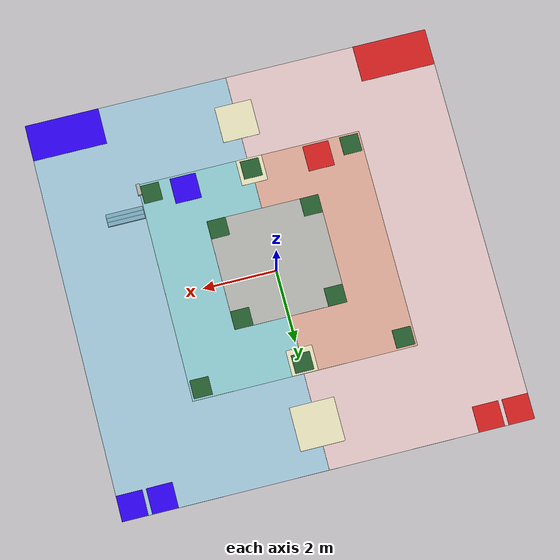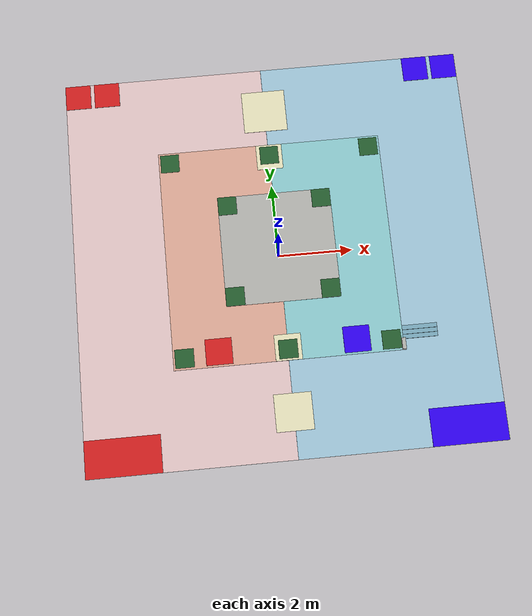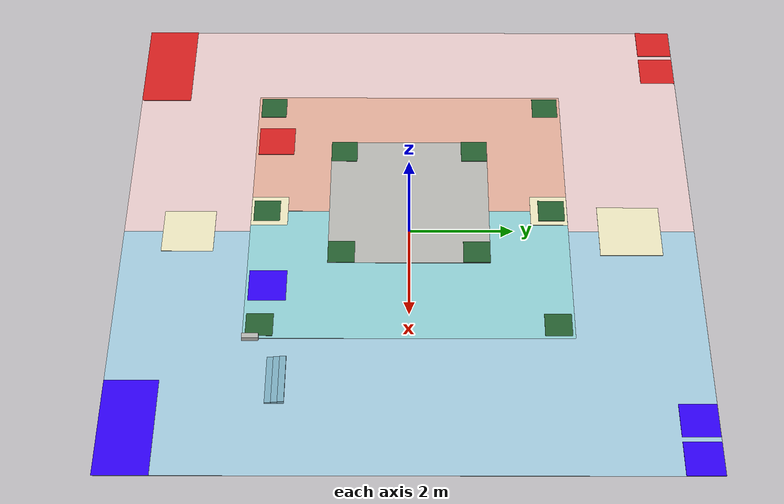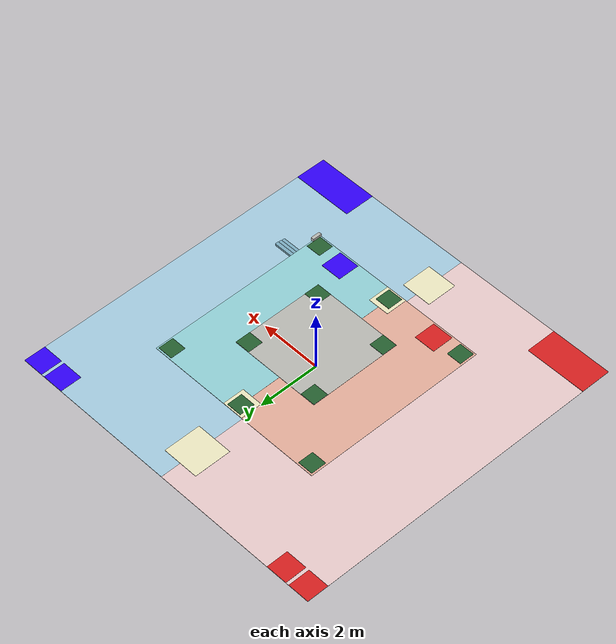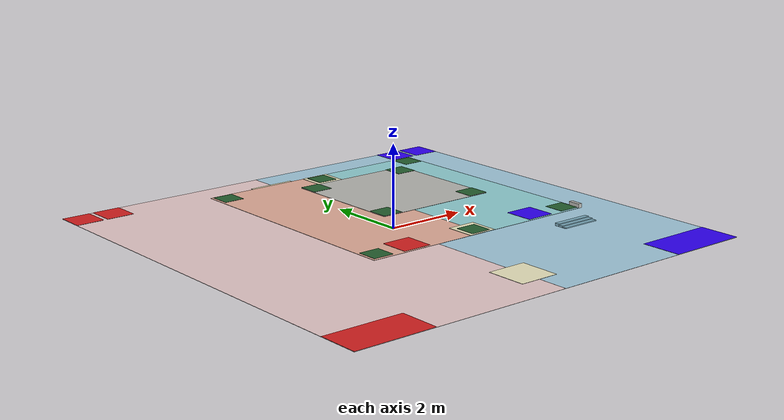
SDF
<sdf version="1.7">
 <world name="robocon2027_arena">
  <model name="rampsup_blue_1">
   <static>1</static>
   <pose>3.5 -2.525 0.015 0 -0 0</pose>
   <link name="link">
    <collision name="col"><geometry><box><size>1 0.118667 0.03</size></box></geometry></collision>
    <visual name="vis">
     <geometry><box><size>1 0.118667 0.03</size></box></geometry>
     <material>
      <ambient>0.51 0.706 0.784 1</ambient>
      <diffuse>0.51 0.706 0.784 1</diffuse>
      <specular>0.04 0.04 0.04 1</specular>
      <emissive>0 0 0 1</emissive>
     </material>
    </visual>
   </link>
  </model>
  <model name="rampsup_blue_2">
   <static>1</static>
   <pose>3.5 -2.4083 0.025 0 -0 0</pose>
   <link name="link">
    <collision name="col"><geometry><box><size>1 0.118667 0.05</size></box></geometry></collision>
    <visual name="vis">
     <geometry><box><size>1 0.118667 0.05</size></box></geometry>
     <material>
      <ambient>0.51 0.706 0.784 1</ambient>
      <diffuse>0.51 0.706 0.784 1</diffuse>
      <specular>0.04 0.04 0.04 1</specular>
      <emissive>0 0 0 1</emissive>
     </material>
    </visual>
   </link>
  </model>
  <model name="rampsup_blue_3">
   <static>1</static>
   <pose>3.5 -2.2917 0.035 0 -0 0</pose>
   <link name="link">
    <collision name="col"><geometry><box><size>1 0.118667 0.07</size></box></geometry></collision>
    <visual name="vis">
     <geometry><box><size>1 0.118667 0.07</size></box></geometry>
     <material>
      <ambient>0.51 0.706 0.784 1</ambient>
      <diffuse>0.51 0.706 0.784 1</diffuse>
      <specular>0.04 0.04 0.04 1</specular>
      <emissive>0 0 0 1</emissive>
     </material>
    </visual>
   </link>
  </model>
  <model name="rail_we_+_0">
   <static>1</static>
   <pose>3 -2.85 0.65 0 -0 0</pose>
   <link name="link">
    <collision name="col"><geometry><box><size>0.1 0.3 0.1</size></box></geometry></collision>
    <visual name="vis">
     <geometry><box><size>0.1 0.3 0.1</size></box></geometry>
     <material>
      <ambient>0.745 0.745 0.725 1</ambient>
      <diffuse>0.745 0.745 0.725 1</diffuse>
      <specular>0.04 0.04 0.04 1</specular>
      <emissive>0 0 0 1</emissive>
     </material>
    </visual>
   </link>
  </model>
  <model name="field_decor">
   <static>1</static>
   <link name="link">
    <visual name="v0">
     <pose>-2.75 0 0.004 0 -0 0</pose>
     <geometry><box><size>5.499 10.999 0.006</size></box></geometry>
     <material>
      <ambient>0.941 0.824 0.824 1</ambient>
      <diffuse>0.941 0.824 0.824 1</diffuse>
      <specular>0.04 0.04 0.04 1</specular>
      <emissive>0 0 0 1</emissive>
     </material>
    </visual>
    <visual name="v1">
     <pose>2.75 0 0.004 0 -0 0</pose>
     <geometry><box><size>5.499 10.999 0.006</size></box></geometry>
     <material>
      <ambient>0.667 0.824 0.902 1</ambient>
      <diffuse>0.667 0.824 0.902 1</diffuse>
      <specular>0.04 0.04 0.04 1</specular>
      <emissive>0 0 0 1</emissive>
     </material>
    </visual>
    <visual name="v2">
     <pose>-5.15 5.15 0.01 0 -0 0</pose>
     <geometry><box><size>0.696 0.696 0.006</size></box></geometry>
     <material>
      <ambient>0.875 0.133 0.133 1</ambient>
      <diffuse>0.875 0.133 0.133 1</diffuse>
      <specular>0.04 0.04 0.04 1</specular>
      <emissive>0 0 0 1</emissive>
     </material>
    </visual>
    <visual name="v3">
     <pose>-4.35 5.15 0.01 0 -0 0</pose>
     <geometry><box><size>0.696 0.696 0.006</size></box></geometry>
     <material>
      <ambient>0.875 0.133 0.133 1</ambient>
      <diffuse>0.875 0.133 0.133 1</diffuse>
      <specular>0.04 0.04 0.04 1</specular>
      <emissive>0 0 0 1</emissive>
     </material>
    </visual>
    <visual name="v4">
     <pose>4.35 5.15 0.01 0 -0 0</pose>
     <geometry><box><size>0.696 0.696 0.006</size></box></geometry>
     <material>
      <ambient>0.196 0 1 1</ambient>
      <diffuse>0.196 0 1 1</diffuse>
      <specular>0.04 0.04 0.04 1</specular>
      <emissive>0 0 0 1</emissive>
     </material>
    </visual>
    <visual name="v5">
     <pose>5.15 5.15 0.01 0 -0 0</pose>
     <geometry><box><size>0.696 0.696 0.006</size></box></geometry>
     <material>
      <ambient>0.196 0 1 1</ambient>
      <diffuse>0.196 0 1 1</diffuse>
      <specular>0.04 0.04 0.04 1</specular>
      <emissive>0 0 0 1</emissive>
     </material>
    </visual>
    <visual name="v6">
     <pose>-4.5 -5 0.01 0 -0 0</pose>
     <geometry><box><size>2 1 0.006</size></box></geometry>
     <material>
      <ambient>0.875 0.133 0.133 1</ambient>
      <diffuse>0.875 0.133 0.133 1</diffuse>
      <specular>0.04 0.04 0.04 1</specular>
      <emissive>0 0 0 1</emissive>
     </material>
    </visual>
    <visual name="v7">
     <pose>4.5 -5 0.01 0 -0 0</pose>
     <geometry><box><size>2 1 0.006</size></box></geometry>
     <material>
      <ambient>0.196 0 1 1</ambient>
      <diffuse>0.196 0 1 1</diffuse>
      <specular>0.04 0.04 0.04 1</specular>
      <emissive>0 0 0 1</emissive>
     </material>
    </visual>
    <visual name="v8">
     <pose>0 4.25 0.01 0 -0 0</pose>
     <geometry><box><size>1.196 1.196 0.006</size></box></geometry>
     <material>
      <ambient>0.961 0.941 0.784 1</ambient>
      <diffuse>0.961 0.941 0.784 1</diffuse>
      <specular>0.04 0.04 0.04 1</specular>
      <emissive>0 0 0 1</emissive>
     </material>
    </visual>
    <visual name="v9">
     <pose>0 -4.25 0.01 0 -0 0</pose>
     <geometry><box><size>0.996 0.996 0.006</size></box></geometry>
     <material>
      <ambient>0.961 0.941 0.784 1</ambient>
      <diffuse>0.961 0.941 0.784 1</diffuse>
      <specular>0.04 0.04 0.04 1</specular>
      <emissive>0 0 0 1</emissive>
     </material>
    </visual>
    <visual name="v10">
     <pose>-1.5 0 0.604 0 -0 0</pose>
     <geometry><box><size>2.999 5.999 0.006</size></box></geometry>
     <material>
      <ambient>0.922 0.706 0.627 1</ambient>
      <diffuse>0.922 0.706 0.627 1</diffuse>
      <specular>0.04 0.04 0.04 1</specular>
      <emissive>0 0 0 1</emissive>
     </material>
    </visual>
    <visual name="v11">
     <pose>1.5 0 0.604 0 -0 0</pose>
     <geometry><box><size>2.999 5.999 0.006</size></box></geometry>
     <material>
      <ambient>0.588 0.843 0.863 1</ambient>
      <diffuse>0.588 0.843 0.863 1</diffuse>
      <specular>0.04 0.04 0.04 1</specular>
      <emissive>0 0 0 1</emissive>
     </material>
    </visual>
    <visual name="v12">
     <pose>0 0 0.904 0 -0 0</pose>
     <geometry><box><size>2.999 2.999 0.006</size></box></geometry>
     <material>
      <ambient>0.745 0.745 0.725 1</ambient>
      <diffuse>0.745 0.745 0.725 1</diffuse>
      <specular>0.04 0.04 0.04 1</specular>
      <emissive>0 0 0 1</emissive>
     </material>
    </visual>
    <visual name="v13">
     <pose>-1.8 -2.6 0.61 0 -0 0</pose>
     <geometry><box><size>0.696 0.696 0.006</size></box></geometry>
     <material>
      <ambient>0.875 0.133 0.133 1</ambient>
      <diffuse>0.875 0.133 0.133 1</diffuse>
      <specular>0.04 0.04 0.04 1</specular>
      <emissive>0 0 0 1</emissive>
     </material>
    </visual>
    <visual name="v14">
     <pose>1.8 -2.6 0.61 0 -0 0</pose>
     <geometry><box><size>0.696 0.696 0.006</size></box></geometry>
     <material>
      <ambient>0.196 0 1 1</ambient>
      <diffuse>0.196 0 1 1</diffuse>
      <specular>0.04 0.04 0.04 1</specular>
      <emissive>0 0 0 1</emissive>
     </material>
    </visual>
    <visual name="v15">
     <pose>0 -2.65 0.61 0 -0 0</pose>
     <geometry><box><size>0.696 0.696 0.006</size></box></geometry>
     <material>
      <ambient>0.961 0.941 0.784 1</ambient>
      <diffuse>0.961 0.941 0.784 1</diffuse>
      <specular>0.04 0.04 0.04 1</specular>
      <emissive>0 0 0 1</emissive>
     </material>
    </visual>
    <visual name="v16">
     <pose>0 2.65 0.61 0 -0 0</pose>
     <geometry><box><size>0.696 0.696 0.006</size></box></geometry>
     <material>
      <ambient>0.961 0.941 0.784 1</ambient>
      <diffuse>0.961 0.941 0.784 1</diffuse>
      <specular>0.04 0.04 0.04 1</specular>
      <emissive>0 0 0 1</emissive>
     </material>
    </visual>
    <visual name="v17">
     <pose>-2.7 -2.7 0.616 0 -0 0</pose>
     <geometry><box><size>0.496 0.496 0.006</size></box></geometry>
     <material>
      <ambient>0.157 0.392 0.196 1</ambient>
      <diffuse>0.157 0.392 0.196 1</diffuse>
      <specular>0.04 0.04 0.04 1</specular>
      <emissive>0 0 0 1</emissive>
     </material>
    </visual>
    <visual name="v18">
     <pose>0 -2.7 0.616 0 -0 0</pose>
     <geometry><box><size>0.496 0.496 0.006</size></box></geometry>
     <material>
      <ambient>0.157 0.392 0.196 1</ambient>
      <diffuse>0.157 0.392 0.196 1</diffuse>
      <specular>0.04 0.04 0.04 1</specular>
      <emissive>0 0 0 1</emissive>
     </material>
    </visual>
    <visual name="v19">
     <pose>2.7 -2.7 0.616 0 -0 0</pose>
     <geometry><box><size>0.496 0.496 0.006</size></box></geometry>
     <material>
      <ambient>0.157 0.392 0.196 1</ambient>
      <diffuse>0.157 0.392 0.196 1</diffuse>
      <specular>0.04 0.04 0.04 1</specular>
      <emissive>0 0 0 1</emissive>
     </material>
    </visual>
    <visual name="v20">
     <pose>-2.7 2.7 0.616 0 -0 0</pose>
     <geometry><box><size>0.496 0.496 0.006</size></box></geometry>
     <material>
      <ambient>0.157 0.392 0.196 1</ambient>
      <diffuse>0.157 0.392 0.196 1</diffuse>
      <specular>0.04 0.04 0.04 1</specular>
      <emissive>0 0 0 1</emissive>
     </material>
    </visual>
    <visual name="v21">
     <pose>0 2.7 0.616 0 -0 0</pose>
     <geometry><box><size>0.496 0.496 0.006</size></box></geometry>
     <material>
      <ambient>0.157 0.392 0.196 1</ambient>
      <diffuse>0.157 0.392 0.196 1</diffuse>
      <specular>0.04 0.04 0.04 1</specular>
      <emissive>0 0 0 1</emissive>
     </material>
    </visual>
    <visual name="v22">
     <pose>2.7 2.7 0.616 0 -0 0</pose>
     <geometry><box><size>0.496 0.496 0.006</size></box></geometry>
     <material>
      <ambient>0.157 0.392 0.196 1</ambient>
      <diffuse>0.157 0.392 0.196 1</diffuse>
      <specular>0.04 0.04 0.04 1</specular>
      <emissive>0 0 0 1</emissive>
     </material>
    </visual>
    <visual name="v23">
     <pose>-1.25 -1.25 0.916 0 -0 0</pose>
     <geometry><box><size>0.496 0.496 0.006</size></box></geometry>
     <material>
      <ambient>0.157 0.392 0.196 1</ambient>
      <diffuse>0.157 0.392 0.196 1</diffuse>
      <specular>0.04 0.04 0.04 1</specular>
      <emissive>0 0 0 1</emissive>
     </material>
    </visual>
    <visual name="v24">
     <pose>1.25 -1.25 0.916 0 -0 0</pose>
     <geometry><box><size>0.496 0.496 0.006</size></box></geometry>
     <material>
      <ambient>0.157 0.392 0.196 1</ambient>
      <diffuse>0.157 0.392 0.196 1</diffuse>
      <specular>0.04 0.04 0.04 1</specular>
      <emissive>0 0 0 1</emissive>
     </material>
    </visual>
    <visual name="v25">
     <pose>-1.25 1.25 0.916 0 -0 0</pose>
     <geometry><box><size>0.496 0.496 0.006</size></box></geometry>
     <material>
      <ambient>0.157 0.392 0.196 1</ambient>
      <diffuse>0.157 0.392 0.196 1</diffuse>
      <specular>0.04 0.04 0.04 1</specular>
      <emissive>0 0 0 1</emissive>
     </material>
    </visual>
    <visual name="v26">
     <pose>1.25 1.25 0.916 0 -0 0</pose>
     <geometry><box><size>0.496 0.496 0.006</size></box></geometry>
     <material>
      <ambient>0.157 0.392 0.196 1</ambient>
      <diffuse>0.157 0.392 0.196 1</diffuse>
      <specular>0.04 0.04 0.04 1</specular>
      <emissive>0 0 0 1</emissive>
     </material>
    </visual>
   </link>
  </model>
 </world>
</sdf>
